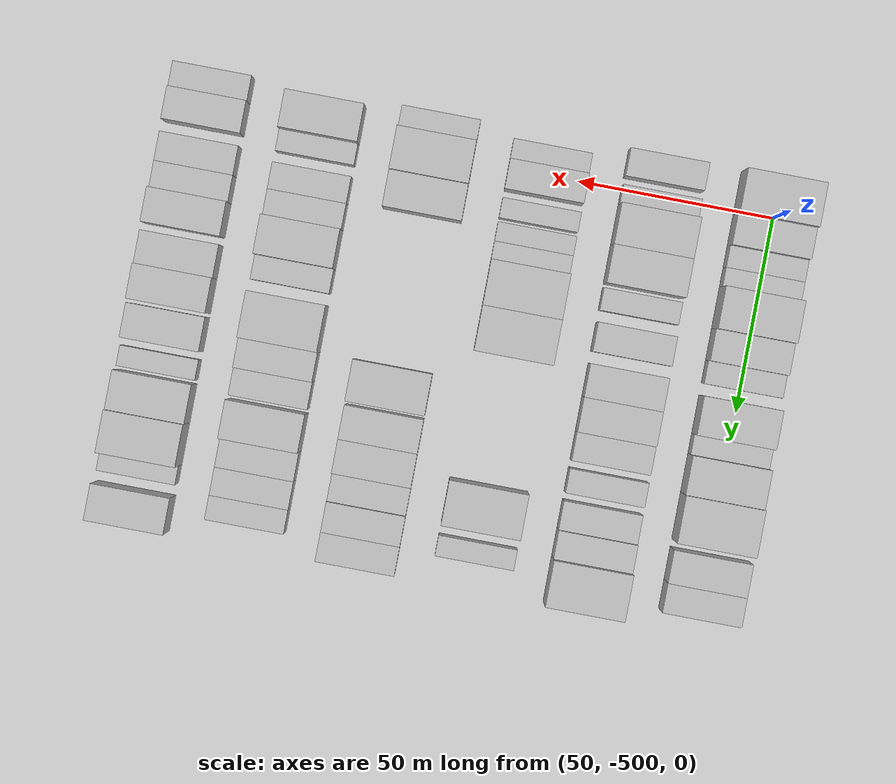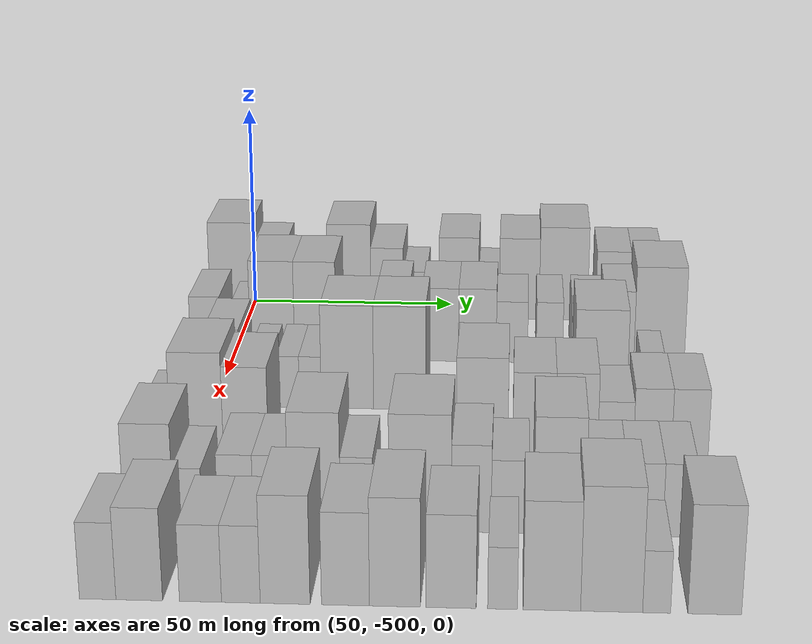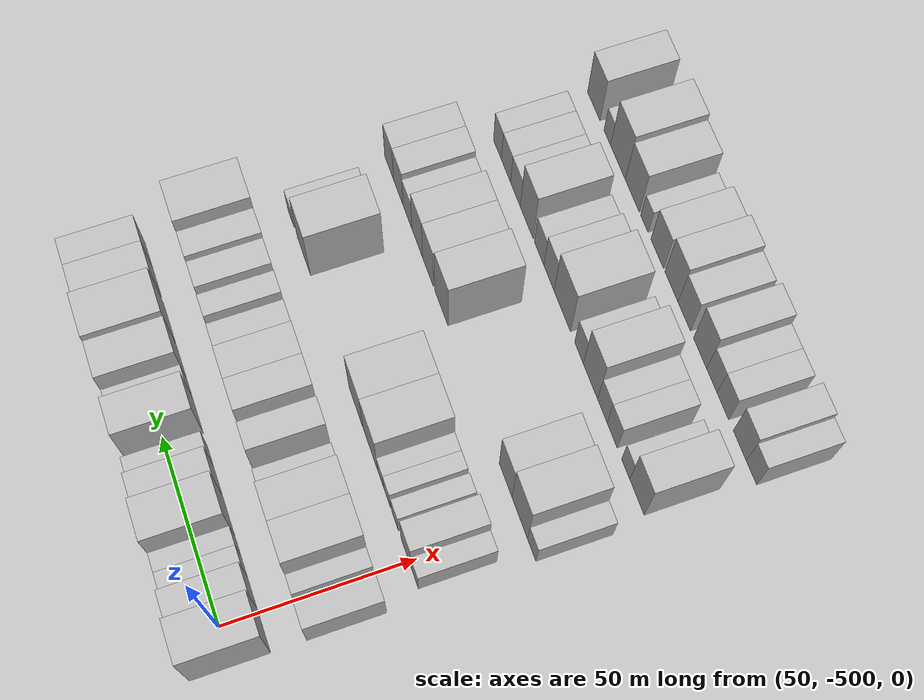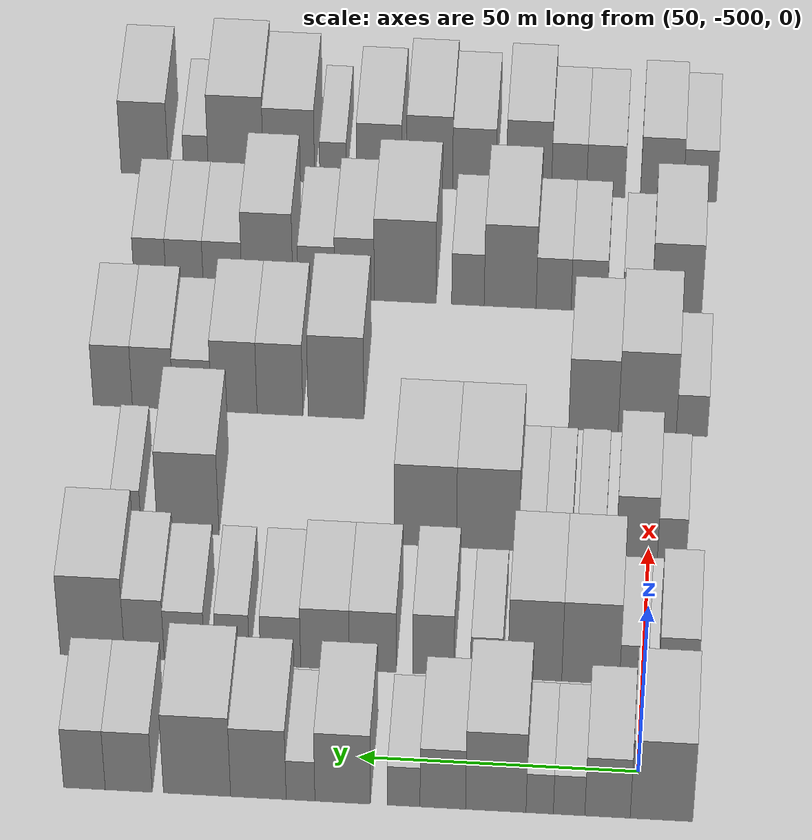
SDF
<sdf version="1.6">
 <world name="default">
  <model name="building_1">
   <static>1</static>
   <pose>50.0000 -504.4552 0 0.000000 0.000000 0.000000</pose>
   <link name="link">
    <pose>0 0 12.00 0 0 0</pose>
    <collision name="collision"><geometry><box><size>20.0000 11.0896 24.0000</size></box></geometry></collision>
    <visual name="visual">
     <cast_shadows>0</cast_shadows>
     <geometry><box><size>20.0000 11.0896 24.0000</size></box></geometry>
     <material>
      <script>
       <uri>model://HANNAS_wall/materials/scripts</uri>
       <uri>model://HANNAS_wall/materials/textures</uri>
       <name>vrc/HANNAS_wall</name>
      </script>
     </material>
    </visual>
   </link>
  </model>
  <model name="building_2">
   <static>1</static>
   <pose>50.0000 -494.8866 0 0.000000 0.000000 0.000000</pose>
   <link name="link">
    <pose>0 0 9.00 0 0 0</pose>
    <collision name="collision"><geometry><box><size>20.0000 8.0475 18.0000</size></box></geometry></collision>
    <visual name="visual">
     <cast_shadows>0</cast_shadows>
     <geometry><box><size>20.0000 8.0475 18.0000</size></box></geometry>
     <material>
      <script>
       <uri>model://HANNAS_wall/materials/scripts</uri>
       <uri>model://HANNAS_wall/materials/textures</uri>
       <name>vrc/HANNAS_wall</name>
      </script>
     </material>
    </visual>
   </link>
  </model>
  <model name="building_3">
   <static>1</static>
   <pose>50.0000 -488.0652 0 0.000000 0.000000 0.000000</pose>
   <link name="link">
    <pose>0 0 6.00 0 0 0</pose>
    <collision name="collision"><geometry><box><size>20.0000 5.5954 12.0000</size></box></geometry></collision>
    <visual name="visual">
     <cast_shadows>0</cast_shadows>
     <geometry><box><size>20.0000 5.5954 12.0000</size></box></geometry>
     <material>
      <script>
       <uri>model://HANNAS_wall/materials/scripts</uri>
       <uri>model://HANNAS_wall/materials/textures</uri>
       <name>vrc/HANNAS_wall</name>
      </script>
     </material>
    </visual>
   </link>
  </model>
  <model name="building_4">
   <static>1</static>
   <pose>50.0000 -482.8404 0 0.000000 0.000000 0.000000</pose>
   <link name="link">
    <pose>0 0 6.00 0 0 0</pose>
    <collision name="collision"><geometry><box><size>20.0000 4.8542 12.0000</size></box></geometry></collision>
    <visual name="visual">
     <cast_shadows>0</cast_shadows>
     <geometry><box><size>20.0000 4.8542 12.0000</size></box></geometry>
     <material>
      <script>
       <uri>model://HANNAS_wall/materials/scripts</uri>
       <uri>model://HANNAS_wall/materials/textures</uri>
       <name>vrc/HANNAS_wall</name>
      </script>
     </material>
    </visual>
   </link>
  </model>
  <model name="building_5">
   <static>1</static>
   <pose>50.0000 -475.0400 0 0.000000 0.000000 0.000000</pose>
   <link name="link">
    <pose>0 0 12.00 0 0 0</pose>
    <collision name="collision"><geometry><box><size>20.0000 10.7464 24.0000</size></box></geometry></collision>
    <visual name="visual">
     <cast_shadows>0</cast_shadows>
     <geometry><box><size>20.0000 10.7464 24.0000</size></box></geometry>
     <material>
      <script>
       <uri>model://HANNAS_wall/materials/scripts</uri>
       <uri>model://HANNAS_wall/materials/textures</uri>
       <name>vrc/HANNAS_wall</name>
      </script>
     </material>
    </visual>
   </link>
  </model>
  <model name="building_6">
   <static>1</static>
   <pose>50.0000 -465.6141 0 0.000000 0.000000 0.000000</pose>
   <link name="link">
    <pose>0 0 9.00 0 0 0</pose>
    <collision name="collision"><geometry><box><size>20.0000 8.1053 18.0000</size></box></geometry></collision>
    <visual name="visual">
     <cast_shadows>0</cast_shadows>
     <geometry><box><size>20.0000 8.1053 18.0000</size></box></geometry>
     <material>
      <script>
       <uri>model://HANNAS_wall/materials/scripts</uri>
       <uri>model://HANNAS_wall/materials/textures</uri>
       <name>vrc/HANNAS_wall</name>
      </script>
     </material>
    </visual>
   </link>
  </model>
  <model name="building_7">
   <static>1</static>
   <pose>50.0000 -458.6452 0 0.000000 0.000000 0.000000</pose>
   <link name="link">
    <pose>0 0 6.00 0 0 0</pose>
    <collision name="collision"><geometry><box><size>20.0000 5.8325 12.0000</size></box></geometry></collision>
    <visual name="visual">
     <cast_shadows>0</cast_shadows>
     <geometry><box><size>20.0000 5.8325 12.0000</size></box></geometry>
     <material>
      <script>
       <uri>model://HANNAS_wall/materials/scripts</uri>
       <uri>model://HANNAS_wall/materials/textures</uri>
       <name>vrc/HANNAS_wall</name>
      </script>
     </material>
    </visual>
   </link>
  </model>
  <model name="building_8">
   <static>1</static>
   <pose>50.0000 -447.7873 0 0.000000 0.000000 0.000000</pose>
   <link name="link">
    <pose>0 0 10.50 0 0 0</pose>
    <collision name="collision"><geometry><box><size>20.0000 9.8834 21.0000</size></box></geometry></collision>
    <visual name="visual">
     <cast_shadows>0</cast_shadows>
     <geometry><box><size>20.0000 9.8834 21.0000</size></box></geometry>
     <material>
      <script>
       <uri>model://HANNAS_wall/materials/scripts</uri>
       <uri>model://HANNAS_wall/materials/textures</uri>
       <name>vrc/HANNAS_wall</name>
      </script>
     </material>
    </visual>
   </link>
  </model>
  <model name="building_9">
   <static>1</static>
   <pose>50.0000 -440.2794 0 0.000000 0.000000 0.000000</pose>
   <link name="link">
    <pose>0 0 6.00 0 0 0</pose>
    <collision name="collision"><geometry><box><size>20.0000 5.1324 12.0000</size></box></geometry></collision>
    <visual name="visual">
     <cast_shadows>0</cast_shadows>
     <geometry><box><size>20.0000 5.1324 12.0000</size></box></geometry>
     <material>
      <script>
       <uri>model://HANNAS_wall/materials/scripts</uri>
       <uri>model://HANNAS_wall/materials/textures</uri>
       <name>vrc/HANNAS_wall</name>
      </script>
     </material>
    </visual>
   </link>
  </model>
  <model name="building_10">
   <static>1</static>
   <pose>50.0000 -432.7573 0 0.000000 0.000000 0.000000</pose>
   <link name="link">
    <pose>0 0 10.50 0 0 0</pose>
    <collision name="collision"><geometry><box><size>20.0000 9.9118 21.0000</size></box></geometry></collision>
    <visual name="visual">
     <cast_shadows>0</cast_shadows>
     <geometry><box><size>20.0000 9.9118 21.0000</size></box></geometry>
     <material>
      <script>
       <uri>model://HANNAS_wall/materials/scripts</uri>
       <uri>model://HANNAS_wall/materials/textures</uri>
       <name>vrc/HANNAS_wall</name>
      </script>
     </material>
    </visual>
   </link>
  </model>
  <model name="building_11">
   <static>1</static>
   <pose>50.0000 -421.8053 0 0.000000 0.000000 0.000000</pose>
   <link name="link">
    <pose>0 0 12.00 0 0 0</pose>
    <collision name="collision"><geometry><box><size>20.0000 11.9922 24.0000</size></box></geometry></collision>
    <visual name="visual">
     <cast_shadows>0</cast_shadows>
     <geometry><box><size>20.0000 11.9922 24.0000</size></box></geometry>
     <material>
      <script>
       <uri>model://HANNAS_wall/materials/scripts</uri>
       <uri>model://HANNAS_wall/materials/textures</uri>
       <name>vrc/HANNAS_wall</name>
      </script>
     </material>
    </visual>
   </link>
  </model>
  <model name="building_12">
   <static>1</static>
   <pose>50.0000 -409.6034 0 0.000000 0.000000 0.000000</pose>
   <link name="link">
    <pose>0 0 9.00 0 0 0</pose>
    <collision name="collision"><geometry><box><size>20.0000 8.4115 18.0000</size></box></geometry></collision>
    <visual name="visual">
     <cast_shadows>0</cast_shadows>
     <geometry><box><size>20.0000 8.4115 18.0000</size></box></geometry>
     <material>
      <script>
       <uri>model://HANNAS_wall/materials/scripts</uri>
       <uri>model://HANNAS_wall/materials/textures</uri>
       <name>vrc/HANNAS_wall</name>
      </script>
     </material>
    </visual>
   </link>
  </model>
  <model name="building_13">
   <static>1</static>
   <pose>50.0000 -401.6802 0 0.000000 0.000000 0.000000</pose>
   <link name="link">
    <pose>0 0 9.00 0 0 0</pose>
    <collision name="collision"><geometry><box><size>20.0000 7.4351 18.0000</size></box></geometry></collision>
    <visual name="visual">
     <cast_shadows>0</cast_shadows>
     <geometry><box><size>20.0000 7.4351 18.0000</size></box></geometry>
     <material>
      <script>
       <uri>model://HANNAS_wall/materials/scripts</uri>
       <uri>model://HANNAS_wall/materials/textures</uri>
       <name>vrc/HANNAS_wall</name>
      </script>
     </material>
    </visual>
   </link>
  </model>
  <model name="building_119">
   <static>1</static>
   <pose>79.0000 -506.4314 0 0.000000 0.000000 0.000000</pose>
   <link name="link">
    <pose>0 0 7.50 0 0 0</pose>
    <collision name="collision"><geometry><box><size>20.0000 7.1371 15.0000</size></box></geometry></collision>
    <visual name="visual">
     <cast_shadows>0</cast_shadows>
     <geometry><box><size>20.0000 7.1371 15.0000</size></box></geometry>
     <material>
      <script>
       <uri>model://HANNAS_wall/materials/scripts</uri>
       <uri>model://HANNAS_wall/materials/textures</uri>
       <name>vrc/HANNAS_wall</name>
      </script>
     </material>
    </visual>
   </link>
  </model>
  <model name="building_120">
   <static>1</static>
   <pose>79.0000 -498.3491 0 0.000000 0.000000 0.000000</pose>
   <link name="link">
    <pose>0 0 6.00 0 0 0</pose>
    <collision name="collision"><geometry><box><size>20.0000 5.0276 12.0000</size></box></geometry></collision>
    <visual name="visual">
     <cast_shadows>0</cast_shadows>
     <geometry><box><size>20.0000 5.0276 12.0000</size></box></geometry>
     <material>
      <script>
       <uri>model://HANNAS_wall/materials/scripts</uri>
       <uri>model://HANNAS_wall/materials/textures</uri>
       <name>vrc/HANNAS_wall</name>
      </script>
     </material>
    </visual>
   </link>
  </model>
  <model name="building_121">
   <static>1</static>
   <pose>79.0000 -490.6177 0 0.000000 0.000000 0.000000</pose>
   <link name="link">
    <pose>0 0 12.00 0 0 0</pose>
    <collision name="collision"><geometry><box><size>20.0000 10.4352 24.0000</size></box></geometry></collision>
    <visual name="visual">
     <cast_shadows>0</cast_shadows>
     <geometry><box><size>20.0000 10.4352 24.0000</size></box></geometry>
     <material>
      <script>
       <uri>model://HANNAS_wall/materials/scripts</uri>
       <uri>model://HANNAS_wall/materials/textures</uri>
       <name>vrc/HANNAS_wall</name>
      </script>
     </material>
    </visual>
   </link>
  </model>
  <model name="building_122">
   <static>1</static>
   <pose>79.0000 -480.5241 0 0.000000 0.000000 0.000000</pose>
   <link name="link">
    <pose>0 0 12.00 0 0 0</pose>
    <collision name="collision"><geometry><box><size>20.0000 9.7521 24.0000</size></box></geometry></collision>
    <visual name="visual">
     <cast_shadows>0</cast_shadows>
     <geometry><box><size>20.0000 9.7521 24.0000</size></box></geometry>
     <material>
      <script>
       <uri>model://HANNAS_wall/materials/scripts</uri>
       <uri>model://HANNAS_wall/materials/textures</uri>
       <name>vrc/HANNAS_wall</name>
      </script>
     </material>
    </visual>
   </link>
  </model>
  <model name="building_123">
   <static>1</static>
   <pose>79.0000 -471.7623 0 0.000000 0.000000 0.000000</pose>
   <link name="link">
    <pose>0 0 6.00 0 0 0</pose>
    <collision name="collision"><geometry><box><size>20.0000 5.7714 12.0000</size></box></geometry></collision>
    <visual name="visual">
     <cast_shadows>0</cast_shadows>
     <geometry><box><size>20.0000 5.7714 12.0000</size></box></geometry>
     <material>
      <script>
       <uri>model://HANNAS_wall/materials/scripts</uri>
       <uri>model://HANNAS_wall/materials/textures</uri>
       <name>vrc/HANNAS_wall</name>
      </script>
     </material>
    </visual>
   </link>
  </model>
  <model name="building_124">
   <static>1</static>
   <pose>79.0000 -462.1359 0 0.000000 0.000000 0.000000</pose>
   <link name="link">
    <pose>0 0 9.00 0 0 0</pose>
    <collision name="collision"><geometry><box><size>20.0000 7.4815 18.0000</size></box></geometry></collision>
    <visual name="visual">
     <cast_shadows>0</cast_shadows>
     <geometry><box><size>20.0000 7.4815 18.0000</size></box></geometry>
     <material>
      <script>
       <uri>model://HANNAS_wall/materials/scripts</uri>
       <uri>model://HANNAS_wall/materials/textures</uri>
       <name>vrc/HANNAS_wall</name>
      </script>
     </material>
    </visual>
   </link>
  </model>
  <model name="building_125">
   <static>1</static>
   <pose>79.0000 -451.1404 0 0.000000 0.000000 0.000000</pose>
   <link name="link">
    <pose>0 0 9.00 0 0 0</pose>
    <collision name="collision"><geometry><box><size>20.0000 8.5095 18.0000</size></box></geometry></collision>
    <visual name="visual">
     <cast_shadows>0</cast_shadows>
     <geometry><box><size>20.0000 8.5095 18.0000</size></box></geometry>
     <material>
      <script>
       <uri>model://HANNAS_wall/materials/scripts</uri>
       <uri>model://HANNAS_wall/materials/textures</uri>
       <name>vrc/HANNAS_wall</name>
      </script>
     </material>
    </visual>
   </link>
  </model>
  <model name="building_126">
   <static>1</static>
   <pose>79.0000 -442.4798 0 0.000000 0.000000 0.000000</pose>
   <link name="link">
    <pose>0 0 9.00 0 0 0</pose>
    <collision name="collision"><geometry><box><size>20.0000 8.8116 18.0000</size></box></geometry></collision>
    <visual name="visual">
     <cast_shadows>0</cast_shadows>
     <geometry><box><size>20.0000 8.8116 18.0000</size></box></geometry>
     <material>
      <script>
       <uri>model://HANNAS_wall/materials/scripts</uri>
       <uri>model://HANNAS_wall/materials/textures</uri>
       <name>vrc/HANNAS_wall</name>
      </script>
     </material>
    </visual>
   </link>
  </model>
  <model name="building_127">
   <static>1</static>
   <pose>79.0000 -434.4267 0 0.000000 0.000000 0.000000</pose>
   <link name="link">
    <pose>0 0 7.50 0 0 0</pose>
    <collision name="collision"><geometry><box><size>20.0000 7.2948 15.0000</size></box></geometry></collision>
    <visual name="visual">
     <cast_shadows>0</cast_shadows>
     <geometry><box><size>20.0000 7.2948 15.0000</size></box></geometry>
     <material>
      <script>
       <uri>model://HANNAS_wall/materials/scripts</uri>
       <uri>model://HANNAS_wall/materials/textures</uri>
       <name>vrc/HANNAS_wall</name>
      </script>
     </material>
    </visual>
   </link>
  </model>
  <model name="building_128">
   <static>1</static>
   <pose>79.0000 -425.6915 0 0.000000 0.000000 0.000000</pose>
   <link name="link">
    <pose>0 0 7.50 0 0 0</pose>
    <collision name="collision"><geometry><box><size>20.0000 6.1756 15.0000</size></box></geometry></collision>
    <visual name="visual">
     <cast_shadows>0</cast_shadows>
     <geometry><box><size>20.0000 6.1756 15.0000</size></box></geometry>
     <material>
      <script>
       <uri>model://HANNAS_wall/materials/scripts</uri>
       <uri>model://HANNAS_wall/materials/textures</uri>
       <name>vrc/HANNAS_wall</name>
      </script>
     </material>
    </visual>
   </link>
  </model>
  <model name="building_129">
   <static>1</static>
   <pose>79.0000 -416.9241 0 0.000000 0.000000 0.000000</pose>
   <link name="link">
    <pose>0 0 7.50 0 0 0</pose>
    <collision name="collision"><geometry><box><size>20.0000 7.3590 15.0000</size></box></geometry></collision>
    <visual name="visual">
     <cast_shadows>0</cast_shadows>
     <geometry><box><size>20.0000 7.3590 15.0000</size></box></geometry>
     <material>
      <script>
       <uri>model://HANNAS_wall/materials/scripts</uri>
       <uri>model://HANNAS_wall/materials/textures</uri>
       <name>vrc/HANNAS_wall</name>
      </script>
     </material>
    </visual>
   </link>
  </model>
  <model name="building_130">
   <static>1</static>
   <pose>79.0000 -409.6298 0 0.000000 0.000000 0.000000</pose>
   <link name="link">
    <pose>0 0 9.00 0 0 0</pose>
    <collision name="collision"><geometry><box><size>20.0000 7.2296 18.0000</size></box></geometry></collision>
    <visual name="visual">
     <cast_shadows>0</cast_shadows>
     <geometry><box><size>20.0000 7.2296 18.0000</size></box></geometry>
     <material>
      <script>
       <uri>model://HANNAS_wall/materials/scripts</uri>
       <uri>model://HANNAS_wall/materials/textures</uri>
       <name>vrc/HANNAS_wall</name>
      </script>
     </material>
    </visual>
   </link>
  </model>
  <model name="building_131">
   <static>1</static>
   <pose>79.0000 -400.1621 0 0.000000 0.000000 0.000000</pose>
   <link name="link">
    <pose>0 0 12.00 0 0 0</pose>
    <collision name="collision"><geometry><box><size>20.0000 11.7057 24.0000</size></box></geometry></collision>
    <visual name="visual">
     <cast_shadows>0</cast_shadows>
     <geometry><box><size>20.0000 11.7057 24.0000</size></box></geometry>
     <material>
      <script>
       <uri>model://HANNAS_wall/materials/scripts</uri>
       <uri>model://HANNAS_wall/materials/textures</uri>
       <name>vrc/HANNAS_wall</name>
      </script>
     </material>
    </visual>
   </link>
  </model>
  <model name="building_234">
   <static>1</static>
   <pose>108.0000 -504.3364 0 0.000000 0.000000 0.000000</pose>
   <link name="link">
    <pose>0 0 6.00 0 0 0</pose>
    <collision name="collision"><geometry><box><size>20.0000 5.3272 12.0000</size></box></geometry></collision>
    <visual name="visual">
     <cast_shadows>0</cast_shadows>
     <geometry><box><size>20.0000 5.3272 12.0000</size></box></geometry>
     <material>
      <script>
       <uri>model://HANNAS_wall/materials/scripts</uri>
       <uri>model://HANNAS_wall/materials/textures</uri>
       <name>vrc/HANNAS_wall</name>
      </script>
     </material>
    </visual>
   </link>
  </model>
  <model name="building_235">
   <static>1</static>
   <pose>108.0000 -497.8502 0 0.000000 0.000000 0.000000</pose>
   <link name="link">
    <pose>0 0 9.00 0 0 0</pose>
    <collision name="collision"><geometry><box><size>20.0000 7.6453 18.0000</size></box></geometry></collision>
    <visual name="visual">
     <cast_shadows>0</cast_shadows>
     <geometry><box><size>20.0000 7.6453 18.0000</size></box></geometry>
     <material>
      <script>
       <uri>model://HANNAS_wall/materials/scripts</uri>
       <uri>model://HANNAS_wall/materials/textures</uri>
       <name>vrc/HANNAS_wall</name>
      </script>
     </material>
    </visual>
   </link>
  </model>
  <model name="building_236">
   <static>1</static>
   <pose>108.0000 -489.4551 0 0.000000 0.000000 0.000000</pose>
   <link name="link">
    <pose>0 0 6.00 0 0 0</pose>
    <collision name="collision"><geometry><box><size>20.0000 5.1450 12.0000</size></box></geometry></collision>
    <visual name="visual">
     <cast_shadows>0</cast_shadows>
     <geometry><box><size>20.0000 5.1450 12.0000</size></box></geometry>
     <material>
      <script>
       <uri>model://HANNAS_wall/materials/scripts</uri>
       <uri>model://HANNAS_wall/materials/textures</uri>
       <name>vrc/HANNAS_wall</name>
      </script>
     </material>
    </visual>
   </link>
  </model>
  <model name="building_237">
   <static>1</static>
   <pose>108.0000 -483.4264 0 0.000000 0.000000 0.000000</pose>
   <link name="link">
    <pose>0 0 6.00 0 0 0</pose>
    <collision name="collision"><geometry><box><size>20.0000 4.9124 12.0000</size></box></geometry></collision>
    <visual name="visual">
     <cast_shadows>0</cast_shadows>
     <geometry><box><size>20.0000 4.9124 12.0000</size></box></geometry>
     <material>
      <script>
       <uri>model://HANNAS_wall/materials/scripts</uri>
       <uri>model://HANNAS_wall/materials/textures</uri>
       <name>vrc/HANNAS_wall</name>
      </script>
     </material>
    </visual>
   </link>
  </model>
  <model name="building_238">
   <static>1</static>
   <pose>108.0000 -478.5536 0 0.000000 0.000000 0.000000</pose>
   <link name="link">
    <pose>0 0 6.00 0 0 0</pose>
    <collision name="collision"><geometry><box><size>20.0000 4.8333 12.0000</size></box></geometry></collision>
    <visual name="visual">
     <cast_shadows>0</cast_shadows>
     <geometry><box><size>20.0000 4.8333 12.0000</size></box></geometry>
     <material>
      <script>
       <uri>model://HANNAS_wall/materials/scripts</uri>
       <uri>model://HANNAS_wall/materials/textures</uri>
       <name>vrc/HANNAS_wall</name>
      </script>
     </material>
    </visual>
   </link>
  </model>
  <model name="building_239">
   <static>1</static>
   <pose>108.0000 -470.3658 0 0.000000 0.000000 0.000000</pose>
   <link name="link">
    <pose>0 0 12.00 0 0 0</pose>
    <collision name="collision"><geometry><box><size>20.0000 11.5423 24.0000</size></box></geometry></collision>
    <visual name="visual">
     <cast_shadows>0</cast_shadows>
     <geometry><box><size>20.0000 11.5423 24.0000</size></box></geometry>
     <material>
      <script>
       <uri>model://HANNAS_wall/materials/scripts</uri>
       <uri>model://HANNAS_wall/materials/textures</uri>
       <name>vrc/HANNAS_wall</name>
      </script>
     </material>
    </visual>
   </link>
  </model>
  <model name="building_240">
   <static>1</static>
   <pose>108.0000 -458.8727 0 0.000000 0.000000 0.000000</pose>
   <link name="link">
    <pose>0 0 12.00 0 0 0</pose>
    <collision name="collision"><geometry><box><size>20.0000 11.4440 24.0000</size></box></geometry></collision>
    <visual name="visual">
     <cast_shadows>0</cast_shadows>
     <geometry><box><size>20.0000 11.4440 24.0000</size></box></geometry>
     <material>
      <script>
       <uri>model://HANNAS_wall/materials/scripts</uri>
       <uri>model://HANNAS_wall/materials/textures</uri>
       <name>vrc/HANNAS_wall</name>
      </script>
     </material>
    </visual>
   </link>
  </model>
  <model name="building_241">
   <static>1</static>
   <pose>108.0000 -414.9750 0 0.000000 0.000000 0.000000</pose>
   <link name="link">
    <pose>0 0 12.00 0 0 0</pose>
    <collision name="collision"><geometry><box><size>20.0000 11.4504 24.0000</size></box></geometry></collision>
    <visual name="visual">
     <cast_shadows>0</cast_shadows>
     <geometry><box><size>20.0000 11.4504 24.0000</size></box></geometry>
     <material>
      <script>
       <uri>model://HANNAS_wall/materials/scripts</uri>
       <uri>model://HANNAS_wall/materials/textures</uri>
       <name>vrc/HANNAS_wall</name>
      </script>
     </material>
    </visual>
   </link>
  </model>
  <model name="building_242">
   <static>1</static>
   <pose>108.0000 -403.6252 0 0.000000 0.000000 0.000000</pose>
   <link name="link">
    <pose>0 0 6.00 0 0 0</pose>
    <collision name="collision"><geometry><box><size>20.0000 5.2492 12.0000</size></box></geometry></collision>
    <visual name="visual">
     <cast_shadows>0</cast_shadows>
     <geometry><box><size>20.0000 5.2492 12.0000</size></box></geometry>
     <material>
      <script>
       <uri>model://HANNAS_wall/materials/scripts</uri>
       <uri>model://HANNAS_wall/materials/textures</uri>
       <name>vrc/HANNAS_wall</name>
      </script>
     </material>
    </visual>
   </link>
  </model>
  <model name="building_349">
   <static>1</static>
   <pose>137.0000 -507.0789 0 0.000000 0.000000 0.000000</pose>
   <link name="link">
    <pose>0 0 6.00 0 0 0</pose>
    <collision name="collision"><geometry><box><size>20.0000 5.8421 12.0000</size></box></geometry></collision>
    <visual name="visual">
     <cast_shadows>0</cast_shadows>
     <geometry><box><size>20.0000 5.8421 12.0000</size></box></geometry>
     <material>
      <script>
       <uri>model://HANNAS_wall/materials/scripts</uri>
       <uri>model://HANNAS_wall/materials/textures</uri>
       <name>vrc/HANNAS_wall</name>
      </script>
     </material>
    </visual>
   </link>
  </model>
  <model name="building_350">
   <static>1</static>
   <pose>137.0000 -498.7183 0 0.000000 0.000000 0.000000</pose>
   <link name="link">
    <pose>0 0 12.00 0 0 0</pose>
    <collision name="collision"><geometry><box><size>20.0000 10.8792 24.0000</size></box></geometry></collision>
    <visual name="visual">
     <cast_shadows>0</cast_shadows>
     <geometry><box><size>20.0000 10.8792 24.0000</size></box></geometry>
     <material>
      <script>
       <uri>model://HANNAS_wall/materials/scripts</uri>
       <uri>model://HANNAS_wall/materials/textures</uri>
       <name>vrc/HANNAS_wall</name>
      </script>
     </material>
    </visual>
   </link>
  </model>
  <model name="building_351">
   <static>1</static>
   <pose>137.0000 -488.6325 0 0.000000 0.000000 0.000000</pose>
   <link name="link">
    <pose>0 0 10.50 0 0 0</pose>
    <collision name="collision"><geometry><box><size>20.0000 9.2924 21.0000</size></box></geometry></collision>
    <visual name="visual">
     <cast_shadows>0</cast_shadows>
     <geometry><box><size>20.0000 9.2924 21.0000</size></box></geometry>
     <material>
      <script>
       <uri>model://HANNAS_wall/materials/scripts</uri>
       <uri>model://HANNAS_wall/materials/textures</uri>
       <name>vrc/HANNAS_wall</name>
      </script>
     </material>
    </visual>
   </link>
  </model>
  <model name="building_352">
   <static>1</static>
   <pose>137.0000 -440.2387 0 0.000000 0.000000 0.000000</pose>
   <link name="link">
    <pose>0 0 12.00 0 0 0</pose>
    <collision name="collision"><geometry><box><size>20.0000 10.4985 24.0000</size></box></geometry></collision>
    <visual name="visual">
     <cast_shadows>0</cast_shadows>
     <geometry><box><size>20.0000 10.4985 24.0000</size></box></geometry>
     <material>
      <script>
       <uri>model://HANNAS_wall/materials/scripts</uri>
       <uri>model://HANNAS_wall/materials/textures</uri>
       <name>vrc/HANNAS_wall</name>
      </script>
     </material>
    </visual>
   </link>
  </model>
  <model name="building_353">
   <static>1</static>
   <pose>137.0000 -429.6685 0 0.000000 0.000000 0.000000</pose>
   <link name="link">
    <pose>0 0 10.50 0 0 0</pose>
    <collision name="collision"><geometry><box><size>20.0000 8.6419 21.0000</size></box></geometry></collision>
    <visual name="visual">
     <cast_shadows>0</cast_shadows>
     <geometry><box><size>20.0000 8.6419 21.0000</size></box></geometry>
     <material>
      <script>
       <uri>model://HANNAS_wall/materials/scripts</uri>
       <uri>model://HANNAS_wall/materials/textures</uri>
       <name>vrc/HANNAS_wall</name>
      </script>
     </material>
    </visual>
   </link>
  </model>
  <model name="building_354">
   <static>1</static>
   <pose>137.0000 -421.0450 0 0.000000 0.000000 0.000000</pose>
   <link name="link">
    <pose>0 0 10.50 0 0 0</pose>
    <collision name="collision"><geometry><box><size>20.0000 8.6050 21.0000</size></box></geometry></collision>
    <visual name="visual">
     <cast_shadows>0</cast_shadows>
     <geometry><box><size>20.0000 8.6050 21.0000</size></box></geometry>
     <material>
      <script>
       <uri>model://HANNAS_wall/materials/scripts</uri>
       <uri>model://HANNAS_wall/materials/textures</uri>
       <name>vrc/HANNAS_wall</name>
      </script>
     </material>
    </visual>
   </link>
  </model>
  <model name="building_355">
   <static>1</static>
   <pose>137.0000 -413.1287 0 0.000000 0.000000 0.000000</pose>
   <link name="link">
    <pose>0 0 7.50 0 0 0</pose>
    <collision name="collision"><geometry><box><size>20.0000 7.2277 15.0000</size></box></geometry></collision>
    <visual name="visual">
     <cast_shadows>0</cast_shadows>
     <geometry><box><size>20.0000 7.2277 15.0000</size></box></geometry>
     <material>
      <script>
       <uri>model://HANNAS_wall/materials/scripts</uri>
       <uri>model://HANNAS_wall/materials/textures</uri>
       <name>vrc/HANNAS_wall</name>
      </script>
     </material>
    </visual>
   </link>
  </model>
  <model name="building_356">
   <static>1</static>
   <pose>137.0000 -405.6602 0 0.000000 0.000000 0.000000</pose>
   <link name="link">
    <pose>0 0 9.00 0 0 0</pose>
    <collision name="collision"><geometry><box><size>20.0000 7.7093 18.0000</size></box></geometry></collision>
    <visual name="visual">
     <cast_shadows>0</cast_shadows>
     <geometry><box><size>20.0000 7.7093 18.0000</size></box></geometry>
     <material>
      <script>
       <uri>model://HANNAS_wall/materials/scripts</uri>
       <uri>model://HANNAS_wall/materials/textures</uri>
       <name>vrc/HANNAS_wall</name>
      </script>
     </material>
    </visual>
   </link>
  </model>
  <model name="building_357">
   <static>1</static>
   <pose>137.0000 -398.1182 0 0.000000 0.000000 0.000000</pose>
   <link name="link">
    <pose>0 0 9.00 0 0 0</pose>
    <collision name="collision"><geometry><box><size>20.0000 7.3747 18.0000</size></box></geometry></collision>
    <visual name="visual">
     <cast_shadows>0</cast_shadows>
     <geometry><box><size>20.0000 7.3747 18.0000</size></box></geometry>
     <material>
      <script>
       <uri>model://HANNAS_wall/materials/scripts</uri>
       <uri>model://HANNAS_wall/materials/textures</uri>
       <name>vrc/HANNAS_wall</name>
      </script>
     </material>
    </visual>
   </link>
  </model>
  <model name="building_467">
   <static>1</static>
   <pose>166.0000 -503.2232 0 0.000000 0.000000 0.000000</pose>
   <link name="link">
    <pose>0 0 10.50 0 0 0</pose>
    <collision name="collision"><geometry><box><size>20.0000 9.5537 21.0000</size></box></geometry></collision>
    <visual name="visual">
     <cast_shadows>0</cast_shadows>
     <geometry><box><size>20.0000 9.5537 21.0000</size></box></geometry>
     <material>
      <script>
       <uri>model://HANNAS_wall/materials/scripts</uri>
       <uri>model://HANNAS_wall/materials/textures</uri>
       <name>vrc/HANNAS_wall</name>
      </script>
     </material>
    </visual>
   </link>
  </model>
  <model name="building_468">
   <static>1</static>
   <pose>166.0000 -495.6900 0 0.000000 0.000000 0.000000</pose>
   <link name="link">
    <pose>0 0 6.00 0 0 0</pose>
    <collision name="collision"><geometry><box><size>20.0000 5.5127 12.0000</size></box></geometry></collision>
    <visual name="visual">
     <cast_shadows>0</cast_shadows>
     <geometry><box><size>20.0000 5.5127 12.0000</size></box></geometry>
     <material>
      <script>
       <uri>model://HANNAS_wall/materials/scripts</uri>
       <uri>model://HANNAS_wall/materials/textures</uri>
       <name>vrc/HANNAS_wall</name>
      </script>
     </material>
    </visual>
   </link>
  </model>
  <model name="building_469">
   <static>1</static>
   <pose>166.0000 -486.5184 0 0.000000 0.000000 0.000000</pose>
   <link name="link">
    <pose>0 0 7.50 0 0 0</pose>
    <collision name="collision"><geometry><box><size>20.0000 6.8305 15.0000</size></box></geometry></collision>
    <visual name="visual">
     <cast_shadows>0</cast_shadows>
     <geometry><box><size>20.0000 6.8305 15.0000</size></box></geometry>
     <material>
      <script>
       <uri>model://HANNAS_wall/materials/scripts</uri>
       <uri>model://HANNAS_wall/materials/textures</uri>
       <name>vrc/HANNAS_wall</name>
      </script>
     </material>
    </visual>
   </link>
  </model>
  <model name="building_470">
   <static>1</static>
   <pose>166.0000 -479.7663 0 0.000000 0.000000 0.000000</pose>
   <link name="link">
    <pose>0 0 7.50 0 0 0</pose>
    <collision name="collision"><geometry><box><size>20.0000 6.6736 15.0000</size></box></geometry></collision>
    <visual name="visual">
     <cast_shadows>0</cast_shadows>
     <geometry><box><size>20.0000 6.6736 15.0000</size></box></geometry>
     <material>
      <script>
       <uri>model://HANNAS_wall/materials/scripts</uri>
       <uri>model://HANNAS_wall/materials/textures</uri>
       <name>vrc/HANNAS_wall</name>
      </script>
     </material>
    </visual>
   </link>
  </model>
  <model name="building_471">
   <static>1</static>
   <pose>166.0000 -471.4575 0 0.000000 0.000000 0.000000</pose>
   <link name="link">
    <pose>0 0 12.00 0 0 0</pose>
    <collision name="collision"><geometry><box><size>20.0000 9.9440 24.0000</size></box></geometry></collision>
    <visual name="visual">
     <cast_shadows>0</cast_shadows>
     <geometry><box><size>20.0000 9.9440 24.0000</size></box></geometry>
     <material>
      <script>
       <uri>model://HANNAS_wall/materials/scripts</uri>
       <uri>model://HANNAS_wall/materials/textures</uri>
       <name>vrc/HANNAS_wall</name>
      </script>
     </material>
    </visual>
   </link>
  </model>
  <model name="building_472">
   <static>1</static>
   <pose>166.0000 -463.3747 0 0.000000 0.000000 0.000000</pose>
   <link name="link">
    <pose>0 0 7.50 0 0 0</pose>
    <collision name="collision"><geometry><box><size>20.0000 6.2217 15.0000</size></box></geometry></collision>
    <visual name="visual">
     <cast_shadows>0</cast_shadows>
     <geometry><box><size>20.0000 6.2217 15.0000</size></box></geometry>
     <material>
      <script>
       <uri>model://HANNAS_wall/materials/scripts</uri>
       <uri>model://HANNAS_wall/materials/textures</uri>
       <name>vrc/HANNAS_wall</name>
      </script>
     </material>
    </visual>
   </link>
  </model>
  <model name="building_473">
   <static>1</static>
   <pose>166.0000 -451.3515 0 0.000000 0.000000 0.000000</pose>
   <link name="link">
    <pose>0 0 12.00 0 0 0</pose>
    <collision name="collision"><geometry><box><size>20.0000 11.8248 24.0000</size></box></geometry></collision>
    <visual name="visual">
     <cast_shadows>0</cast_shadows>
     <geometry><box><size>20.0000 11.8248 24.0000</size></box></geometry>
     <material>
      <script>
       <uri>model://HANNAS_wall/materials/scripts</uri>
       <uri>model://HANNAS_wall/materials/textures</uri>
       <name>vrc/HANNAS_wall</name>
      </script>
     </material>
    </visual>
   </link>
  </model>
  <model name="building_474">
   <static>1</static>
   <pose>166.0000 -441.6546 0 0.000000 0.000000 0.000000</pose>
   <link name="link">
    <pose>0 0 9.00 0 0 0</pose>
    <collision name="collision"><geometry><box><size>20.0000 7.5689 18.0000</size></box></geometry></collision>
    <visual name="visual">
     <cast_shadows>0</cast_shadows>
     <geometry><box><size>20.0000 7.5689 18.0000</size></box></geometry>
     <material>
      <script>
       <uri>model://HANNAS_wall/materials/scripts</uri>
       <uri>model://HANNAS_wall/materials/textures</uri>
       <name>vrc/HANNAS_wall</name>
      </script>
     </material>
    </visual>
   </link>
  </model>
  <model name="building_475">
   <static>1</static>
   <pose>166.0000 -434.3687 0 0.000000 0.000000 0.000000</pose>
   <link name="link">
    <pose>0 0 7.50 0 0 0</pose>
    <collision name="collision"><geometry><box><size>20.0000 7.0028 15.0000</size></box></geometry></collision>
    <visual name="visual">
     <cast_shadows>0</cast_shadows>
     <geometry><box><size>20.0000 7.0028 15.0000</size></box></geometry>
     <material>
      <script>
       <uri>model://HANNAS_wall/materials/scripts</uri>
       <uri>model://HANNAS_wall/materials/textures</uri>
       <name>vrc/HANNAS_wall</name>
      </script>
     </material>
    </visual>
   </link>
  </model>
  <model name="building_476">
   <static>1</static>
   <pose>166.0000 -424.9833 0 0.000000 0.000000 0.000000</pose>
   <link name="link">
    <pose>0 0 12.00 0 0 0</pose>
    <collision name="collision"><geometry><box><size>20.0000 9.7681 24.0000</size></box></geometry></collision>
    <visual name="visual">
     <cast_shadows>0</cast_shadows>
     <geometry><box><size>20.0000 9.7681 24.0000</size></box></geometry>
     <material>
      <script>
       <uri>model://HANNAS_wall/materials/scripts</uri>
       <uri>model://HANNAS_wall/materials/textures</uri>
       <name>vrc/HANNAS_wall</name>
      </script>
     </material>
    </visual>
   </link>
  </model>
  <model name="building_477">
   <static>1</static>
   <pose>166.0000 -416.3820 0 0.000000 0.000000 0.000000</pose>
   <link name="link">
    <pose>0 0 7.50 0 0 0</pose>
    <collision name="collision"><geometry><box><size>20.0000 7.4343 15.0000</size></box></geometry></collision>
    <visual name="visual">
     <cast_shadows>0</cast_shadows>
     <geometry><box><size>20.0000 7.4343 15.0000</size></box></geometry>
     <material>
      <script>
       <uri>model://HANNAS_wall/materials/scripts</uri>
       <uri>model://HANNAS_wall/materials/textures</uri>
       <name>vrc/HANNAS_wall</name>
      </script>
     </material>
    </visual>
   </link>
  </model>
  <model name="building_478">
   <static>1</static>
   <pose>166.0000 -409.0907 0 0.000000 0.000000 0.000000</pose>
   <link name="link">
    <pose>0 0 7.50 0 0 0</pose>
    <collision name="collision"><geometry><box><size>20.0000 7.1484 15.0000</size></box></geometry></collision>
    <visual name="visual">
     <cast_shadows>0</cast_shadows>
     <geometry><box><size>20.0000 7.1484 15.0000</size></box></geometry>
     <material>
      <script>
       <uri>model://HANNAS_wall/materials/scripts</uri>
       <uri>model://HANNAS_wall/materials/textures</uri>
       <name>vrc/HANNAS_wall</name>
      </script>
     </material>
    </visual>
   </link>
  </model>
  <model name="building_479">
   <static>1</static>
   <pose>166.0000 -402.4476 0 0.000000 0.000000 0.000000</pose>
   <link name="link">
    <pose>0 0 7.50 0 0 0</pose>
    <collision name="collision"><geometry><box><size>20.0000 6.1379 15.0000</size></box></geometry></collision>
    <visual name="visual">
     <cast_shadows>0</cast_shadows>
     <geometry><box><size>20.0000 6.1379 15.0000</size></box></geometry>
     <material>
      <script>
       <uri>model://HANNAS_wall/materials/scripts</uri>
       <uri>model://HANNAS_wall/materials/textures</uri>
       <name>vrc/HANNAS_wall</name>
      </script>
     </material>
    </visual>
   </link>
  </model>
  <model name="building_585">
   <static>1</static>
   <pose>195.0000 -506.7530 0 0.000000 0.000000 0.000000</pose>
   <link name="link">
    <pose>0 0 7.50 0 0 0</pose>
    <collision name="collision"><geometry><box><size>20.0000 6.4939 15.0000</size></box></geometry></collision>
    <visual name="visual">
     <cast_shadows>0</cast_shadows>
     <geometry><box><size>20.0000 6.4939 15.0000</size></box></geometry>
     <material>
      <script>
       <uri>model://HANNAS_wall/materials/scripts</uri>
       <uri>model://HANNAS_wall/materials/textures</uri>
       <name>vrc/HANNAS_wall</name>
      </script>
     </material>
    </visual>
   </link>
  </model>
  <model name="building_586">
   <static>1</static>
   <pose>195.0000 -499.3641 0 0.000000 0.000000 0.000000</pose>
   <link name="link">
    <pose>0 0 9.00 0 0 0</pose>
    <collision name="collision"><geometry><box><size>20.0000 8.2839 18.0000</size></box></geometry></collision>
    <visual name="visual">
     <cast_shadows>0</cast_shadows>
     <geometry><box><size>20.0000 8.2839 18.0000</size></box></geometry>
     <material>
      <script>
       <uri>model://HANNAS_wall/materials/scripts</uri>
       <uri>model://HANNAS_wall/materials/textures</uri>
       <name>vrc/HANNAS_wall</name>
      </script>
     </material>
    </visual>
   </link>
  </model>
  <model name="building_587">
   <static>1</static>
   <pose>195.0000 -488.4948 0 0.000000 0.000000 0.000000</pose>
   <link name="link">
    <pose>0 0 7.50 0 0 0</pose>
    <collision name="collision"><geometry><box><size>20.0000 7.4547 15.0000</size></box></geometry></collision>
    <visual name="visual">
     <cast_shadows>0</cast_shadows>
     <geometry><box><size>20.0000 7.4547 15.0000</size></box></geometry>
     <material>
      <script>
       <uri>model://HANNAS_wall/materials/scripts</uri>
       <uri>model://HANNAS_wall/materials/textures</uri>
       <name>vrc/HANNAS_wall</name>
      </script>
     </material>
    </visual>
   </link>
  </model>
  <model name="building_588">
   <static>1</static>
   <pose>195.0000 -481.3518 0 0.000000 0.000000 0.000000</pose>
   <link name="link">
    <pose>0 0 7.50 0 0 0</pose>
    <collision name="collision"><geometry><box><size>20.0000 6.8312 15.0000</size></box></geometry></collision>
    <visual name="visual">
     <cast_shadows>0</cast_shadows>
     <geometry><box><size>20.0000 6.8312 15.0000</size></box></geometry>
     <material>
      <script>
       <uri>model://HANNAS_wall/materials/scripts</uri>
       <uri>model://HANNAS_wall/materials/textures</uri>
       <name>vrc/HANNAS_wall</name>
      </script>
     </material>
    </visual>
   </link>
  </model>
  <model name="building_589">
   <static>1</static>
   <pose>195.0000 -473.5422 0 0.000000 0.000000 0.000000</pose>
   <link name="link">
    <pose>0 0 10.50 0 0 0</pose>
    <collision name="collision"><geometry><box><size>20.0000 8.7881 21.0000</size></box></geometry></collision>
    <visual name="visual">
     <cast_shadows>0</cast_shadows>
     <geometry><box><size>20.0000 8.7881 21.0000</size></box></geometry>
     <material>
      <script>
       <uri>model://HANNAS_wall/materials/scripts</uri>
       <uri>model://HANNAS_wall/materials/textures</uri>
       <name>vrc/HANNAS_wall</name>
      </script>
     </material>
    </visual>
   </link>
  </model>
  <model name="building_590">
   <static>1</static>
   <pose>195.0000 -462.9304 0 0.000000 0.000000 0.000000</pose>
   <link name="link">
    <pose>0 0 9.00 0 0 0</pose>
    <collision name="collision"><geometry><box><size>20.0000 8.4354 18.0000</size></box></geometry></collision>
    <visual name="visual">
     <cast_shadows>0</cast_shadows>
     <geometry><box><size>20.0000 8.4354 18.0000</size></box></geometry>
     <material>
      <script>
       <uri>model://HANNAS_wall/materials/scripts</uri>
       <uri>model://HANNAS_wall/materials/textures</uri>
       <name>vrc/HANNAS_wall</name>
      </script>
     </material>
    </visual>
   </link>
  </model>
  <model name="building_591">
   <static>1</static>
   <pose>195.0000 -454.2567 0 0.000000 0.000000 0.000000</pose>
   <link name="link">
    <pose>0 0 10.50 0 0 0</pose>
    <collision name="collision"><geometry><box><size>20.0000 8.9120 21.0000</size></box></geometry></collision>
    <visual name="visual">
     <cast_shadows>0</cast_shadows>
     <geometry><box><size>20.0000 8.9120 21.0000</size></box></geometry>
     <material>
      <script>
       <uri>model://HANNAS_wall/materials/scripts</uri>
       <uri>model://HANNAS_wall/materials/textures</uri>
       <name>vrc/HANNAS_wall</name>
      </script>
     </material>
    </visual>
   </link>
  </model>
  <model name="building_592">
   <static>1</static>
   <pose>195.0000 -444.4138 0 0.000000 0.000000 0.000000</pose>
   <link name="link">
    <pose>0 0 9.00 0 0 0</pose>
    <collision name="collision"><geometry><box><size>20.0000 8.7737 18.0000</size></box></geometry></collision>
    <visual name="visual">
     <cast_shadows>0</cast_shadows>
     <geometry><box><size>20.0000 8.7737 18.0000</size></box></geometry>
     <material>
      <script>
       <uri>model://HANNAS_wall/materials/scripts</uri>
       <uri>model://HANNAS_wall/materials/textures</uri>
       <name>vrc/HANNAS_wall</name>
      </script>
     </material>
    </visual>
   </link>
  </model>
  <model name="building_593">
   <static>1</static>
   <pose>195.0000 -435.4265 0 0.000000 0.000000 0.000000</pose>
   <link name="link">
    <pose>0 0 6.00 0 0 0</pose>
    <collision name="collision"><geometry><box><size>20.0000 5.2009 12.0000</size></box></geometry></collision>
    <visual name="visual">
     <cast_shadows>0</cast_shadows>
     <geometry><box><size>20.0000 5.2009 12.0000</size></box></geometry>
     <material>
      <script>
       <uri>model://HANNAS_wall/materials/scripts</uri>
       <uri>model://HANNAS_wall/materials/textures</uri>
       <name>vrc/HANNAS_wall</name>
      </script>
     </material>
    </visual>
   </link>
  </model>
  <model name="building_594">
   <static>1</static>
   <pose>195.0000 -426.8348 0 0.000000 0.000000 0.000000</pose>
   <link name="link">
    <pose>0 0 10.50 0 0 0</pose>
    <collision name="collision"><geometry><box><size>20.0000 9.9825 21.0000</size></box></geometry></collision>
    <visual name="visual">
     <cast_shadows>0</cast_shadows>
     <geometry><box><size>20.0000 9.9825 21.0000</size></box></geometry>
     <material>
      <script>
       <uri>model://HANNAS_wall/materials/scripts</uri>
       <uri>model://HANNAS_wall/materials/textures</uri>
       <name>vrc/HANNAS_wall</name>
      </script>
     </material>
    </visual>
   </link>
  </model>
  <model name="building_595">
   <static>1</static>
   <pose>195.0000 -416.4632 0 0.000000 0.000000 0.000000</pose>
   <link name="link">
    <pose>0 0 12.00 0 0 0</pose>
    <collision name="collision"><geometry><box><size>20.0000 10.7607 24.0000</size></box></geometry></collision>
    <visual name="visual">
     <cast_shadows>0</cast_shadows>
     <geometry><box><size>20.0000 10.7607 24.0000</size></box></geometry>
     <material>
      <script>
       <uri>model://HANNAS_wall/materials/scripts</uri>
       <uri>model://HANNAS_wall/materials/textures</uri>
       <name>vrc/HANNAS_wall</name>
      </script>
     </material>
    </visual>
   </link>
  </model>
  <model name="building_596">
   <static>1</static>
   <pose>195.0000 -408.6602 0 0.000000 0.000000 0.000000</pose>
   <link name="link">
    <pose>0 0 6.00 0 0 0</pose>
    <collision name="collision"><geometry><box><size>20.0000 4.8452 12.0000</size></box></geometry></collision>
    <visual name="visual">
     <cast_shadows>0</cast_shadows>
     <geometry><box><size>20.0000 4.8452 12.0000</size></box></geometry>
     <material>
      <script>
       <uri>model://HANNAS_wall/materials/scripts</uri>
       <uri>model://HANNAS_wall/materials/textures</uri>
       <name>vrc/HANNAS_wall</name>
      </script>
     </material>
    </visual>
   </link>
  </model>
  <model name="building_597">
   <static>1</static>
   <pose>195.0000 -398.6115 0 0.000000 0.000000 0.000000</pose>
   <link name="link">
    <pose>0 0 10.50 0 0 0</pose>
    <collision name="collision"><geometry><box><size>20.0000 9.2522 21.0000</size></box></geometry></collision>
    <visual name="visual">
     <cast_shadows>0</cast_shadows>
     <geometry><box><size>20.0000 9.2522 21.0000</size></box></geometry>
     <material>
      <script>
       <uri>model://HANNAS_wall/materials/scripts</uri>
       <uri>model://HANNAS_wall/materials/textures</uri>
       <name>vrc/HANNAS_wall</name>
      </script>
     </material>
    </visual>
   </link>
  </model>
 </world>
</sdf>
